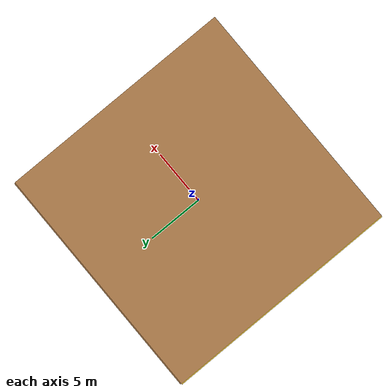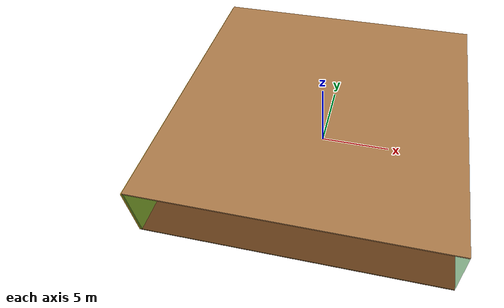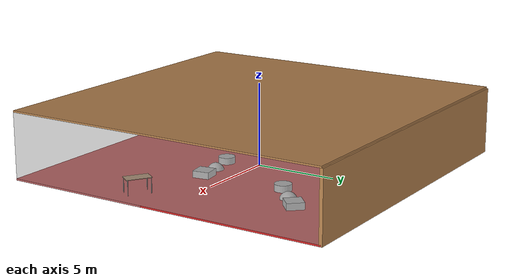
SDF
<sdf version="1.4">
 <world name="default">
  <physics type="ode">
   <max_step_size>0.001</max_step_size>
   <real_time_factor>1</real_time_factor>
   <real_time_update_rate>1000</real_time_update_rate>
   <gravity>0 0 -9.8</gravity>
  </physics>
  <scene><ambient>0.4 0.4 0.4 1</ambient><background>0.7 0.7 0.7 1</background><shadows>1</shadows></scene>
  <model name="Surrounding">
   <static>1</static>
   <link name="Ceiling">
    <collision name="Ceiling_Collision"><geometry><box><size>20 20 0.1</size></box></geometry></collision>
    <visual name="Ceiling_Visual">
     <geometry><box><size>20 20 0.1</size></box></geometry>
     <material>
      <script><uri>file://media/materials/scripts/gazebo.material</uri><name>Gazebo/WoodPallet</name></script>
     </material>
    </visual>
    <pose>0 0 4.05 0 0 0</pose>
   </link>
   <link name="Wall_South">
    <collision name="Wall_South_Collision">
     <geometry><box><size>20 0 4</size></box></geometry>
     <pose>0 0 2 0 -0 0</pose>
    </collision>
    <visual name="Wall_South_Visual">
     <pose>0 0 2 0 -0 0</pose>
     <geometry><box><size>20 0 4</size></box></geometry>
     <material>
      <script><uri>file://media/materials/scripts/gazebo.material</uri><name>Gazebo/GreenTransparent</name></script>
     </material>
    </visual>
    <velocity_decay><linear>0</linear><angular>0</angular></velocity_decay>
    <pose>0 -10 0 0 -0 0</pose>
   </link>
   <link name="Wall_East">
    <collision name="Wall_21_Collision">
     <geometry><box><size>20 0 4</size></box></geometry>
     <pose>0 0 2 0 -0 0</pose>
    </collision>
    <visual name="Wall_21_Visual">
     <pose>0 0 2 0 -0 0</pose>
     <geometry><box><size>20 0 4</size></box></geometry>
     <material>
      <script><uri>file://media/materials/scripts/gazebo.material</uri><name>Gazebo/GreyTransparent</name></script>
     </material>
    </visual>
    <velocity_decay><linear>0</linear><angular>0</angular></velocity_decay>
    <pose>10 0 0 0 -0 1.5708</pose>
   </link>
   <link name="Wall_North">
    <collision name="Wall_22_Collision">
     <geometry><box><size>20 0.2 4</size></box></geometry>
     <pose>0 0 2 0 -0 0</pose>
    </collision>
    <visual name="Wall_22_Visual">
     <pose>0 0 2 0 -0 0</pose>
     <geometry><box><size>20 0.2 4</size></box></geometry>
     <material>
      <script><uri>file://media/materials/scripts/gazebo.material</uri><name>Gazebo/WoodPallet</name></script>
     </material>
    </visual>
    <velocity_decay><linear>0</linear><angular>0</angular></velocity_decay>
    <pose>0 10 0 0 -0 0</pose>
   </link>
   <link name="Wall_West">
    <collision name="Wall_23_Collision">
     <geometry><box><size>20 0.2 4</size></box></geometry>
     <pose>0 0 2 0 -0 0</pose>
    </collision>
    <visual name="Wall_23_Visual">
     <pose>0 0 2 0 -0 0</pose>
     <geometry><box><size>20 0.2 4</size></box></geometry>
     <material>
      <script><uri>file://media/materials/scripts/gazebo.material</uri><name>Gazebo/Gold</name></script>
     </material>
    </visual>
    <velocity_decay><linear>0</linear><angular>0</angular></velocity_decay>
    <pose>-10 0 0 0 0 -1.5708</pose>
   </link>
   <link name="Ground_link">
    <collision name="collision">
     <pose>0 0 .05 0 -0 0</pose>
     <geometry><box><size>20 20 0.1</size></box></geometry>
    </collision>
    <visual name="visual">
     <pose>0 0 .05 0 -0 0</pose>
     <geometry><box><size>20 20 0.1</size></box></geometry>
     <material>
      <script><uri>file://media/materials/scripts/gazebo.material</uri><name>Gazebo/RedGlow</name></script>
     </material>
    </visual>
   </link>
   <static>1</static>
  </model>
  <spherical_coordinates>
   <surface_model>EARTH_WGS84</surface_model>
   <latitude_deg>0</latitude_deg>
   <longitude_deg>0</longitude_deg>
   <elevation>0</elevation>
   <heading_deg>0</heading_deg>
  </spherical_coordinates>
  <light name="lightball_0" type="diffuse">
   <diffuse>0.8 0.8 0.8 1</diffuse>
   <specular>0.2 0.2 0.2 1</specular>
   <attenuation>
    <range>100</range>
    <constant>0.7</constant>
    <linear>0.01</linear>
    <quadratic>0.001</quadratic>
   </attenuation>
   <direction>-0.5 0.1 -0.9</direction>
   <pose>0.704257489359 -9.12960451718 2.89092700194 0 0 0</pose>
  </light>
  <light name="lightball_1" type="diffuse">
   <diffuse>0.8 0.8 0.8 1</diffuse>
   <specular>0.2 0.2 0.2 1</specular>
   <attenuation>
    <range>100</range>
    <constant>0.7</constant>
    <linear>0.01</linear>
    <quadratic>0.001</quadratic>
   </attenuation>
   <direction>-0.5 0.1 -0.9</direction>
   <pose>-8.414092834 -6.56927441613 2.65973665995 0 0 0</pose>
  </light>
  <light name="lightball_2" type="diffuse">
   <diffuse>0.8 0.8 0.8 1</diffuse>
   <specular>0.2 0.2 0.2 1</specular>
   <attenuation>
    <range>100</range>
    <constant>0.7</constant>
    <linear>0.01</linear>
    <quadratic>0.001</quadratic>
   </attenuation>
   <direction>-0.5 0.1 -0.9</direction>
   <pose>-2.73441490391 -4.74128462148 3.54188909541 0 0 0</pose>
  </light>
  <light name="lightball_3" type="diffuse">
   <diffuse>0.8 0.8 0.8 1</diffuse>
   <specular>0.2 0.2 0.2 1</specular>
   <attenuation>
    <range>100</range>
    <constant>0.7</constant>
    <linear>0.01</linear>
    <quadratic>0.001</quadratic>
   </attenuation>
   <direction>-0.5 0.1 -0.9</direction>
   <pose>-7.47954296715 -5.04869581034 2.93684493803 0 0 0</pose>
  </light>
  <light name="lightball_4" type="diffuse">
   <diffuse>0.8 0.8 0.8 1</diffuse>
   <specular>0.2 0.2 0.2 1</specular>
   <attenuation>
    <range>100</range>
    <constant>0.7</constant>
    <linear>0.01</linear>
    <quadratic>0.001</quadratic>
   </attenuation>
   <direction>-0.5 0.1 -0.9</direction>
   <pose>4.43156967396 -4.39405280688 1.82607766558 0 0 0</pose>
  </light>
  <light name="lightball_5" type="diffuse">
   <diffuse>0.8 0.8 0.8 1</diffuse>
   <specular>0.2 0.2 0.2 1</specular>
   <attenuation>
    <range>100</range>
    <constant>0.7</constant>
    <linear>0.01</linear>
    <quadratic>0.001</quadratic>
   </attenuation>
   <direction>-0.5 0.1 -0.9</direction>
   <pose>8.51306725442 -3.77807814831 3.7847455204 0 0 0</pose>
  </light>
  <light name="lightball_6" type="diffuse">
   <diffuse>0.8 0.8 0.8 1</diffuse>
   <specular>0.2 0.2 0.2 1</specular>
   <attenuation>
    <range>100</range>
    <constant>0.7</constant>
    <linear>0.01</linear>
    <quadratic>0.001</quadratic>
   </attenuation>
   <direction>-0.5 0.1 -0.9</direction>
   <pose>6.27401922571 9.86684994894 1.13280398289 0 0 0</pose>
  </light>
  <include><uri>model://cabinet</uri><pose>-5.62226283918 -3.51480606794 0 0 0 2.93891008176</pose></include>
  <include>
   <uri>model://textured_shapes</uri>
   <pose>-3.85177719896 -2.00605995975 0 0 0 3.1257158604</pose>
  </include>
  <include><uri>model://table</uri><pose>-1.45637281734 4.5086883198 0 0 0 0.177930028618</pose></include>
  <include>
   <uri>model://textured_shapes</uri>
   <pose>2.33026013305 -1.5166586793 0 0 0 1.72494364664</pose>
  </include>
  <include>
   <uri>model://textured_shapes</uri>
   <pose>4.69916484731 4.91006121914 0 0 0 2.31778560364</pose>
  </include>
  <include><uri>model://table</uri><pose>8.30884590757 -2.5772487852 0 0 0 2.55792487036</pose></include>
 </world>
</sdf>

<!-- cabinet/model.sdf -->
<sdf version="1.5">
  <model name="cabinet">
    <static>true</static>
    <link name="cabinet_bottom_plate">
      <inertial>
        <pose>0 0 -1 0 0 0</pose>
        <inertia>
          <ixx>2.050000</ixx>
          <ixy>0</ixy>
          <ixz>0</ixz>
          <iyy>2.050000</iyy>
          <iyz>0</iyz>
          <izz>2.050000</izz>
        </inertia>
        <mass>25.000000</mass>
      </inertial>
      <collision name="cabinet_bottom_plate_geom">
        <pose>0 0 0.010000 0 0 0</pose>
        <geometry>
          <box>
            <size>0.450000 0.450000 0.020000</size>
          </box>
        </geometry>
      </collision>
      <visual name="cabinet_bottom_plate_geom_visual">
        <pose>0 0 0.010000 0 0 0</pose>
        <geometry>
          <box>
            <size>0.450000 0.450000 0.020000</size>
          </box>
        </geometry>
        <material>
          <script>
            <uri>model://media/materials/scripts/gazebo.material</uri>
            <name>Gazebo/Wood</name>
          </script>
        </material>
      </visual>
      <collision name="cabinet_bottom_plate_geom_cabinet_back_plate">
        <pose>0.235000 0 0.510000 0 0 0</pose>
        <geometry>
          <box>
            <size>0.020000 0.450000 1.020000</size>
          </box>
        </geometry>
      </collision>
      <visual name="cabinet_bottom_plate_geom_cabinet_back_plate_visual">
        <pose>0.235000 0 0.510000 0 0 0</pose>
        <geometry>
          <box>
            <size>0.020000 0.450000 1.020000</size>
          </box>
        </geometry>
        <material>
          <script>
            <uri>model://media/materials/scripts/gazebo.material</uri>
            <name>Gazebo/Wood</name>
          </script>
        </material>
      </visual>
      <collision name="cabinet_bottom_plate_geom_cabinet_left_plate">
        <pose>0 0.235000 0.510000 0 0 0</pose>
        <geometry>
          <box>
            <size>0.450000 0.020000 1.020000</size>
          </box>
        </geometry>
      </collision>
      <visual name="cabinet_bottom_plate_geom_cabinet_left_plate_visual">
        <pose>0 0.235000 0.510000 0 0 0</pose>
        <geometry>
          <box>
            <size>0.450000 0.020000 1.020000</size>
          </box>
        </geometry>
        <material>
          <script>
            <uri>model://media/materials/scripts/gazebo.material</uri>
            <name>Gazebo/Wood</name>
          </script>
        </material>
      </visual>
      <collision name="cabinet_bottom_plate_geom_cabinet_middle_plate">
        <pose>0 0 0.510000 0 0 0</pose>
        <geometry>
          <box>
            <size>0.450000 0.450000 0.020000</size>
          </box>
        </geometry>
      </collision>
      <visual name="cabinet_bottom_plate_geom_cabinet_middle_plate_visual">
        <pose>0 0 0.510000 0 0 0</pose>
        <geometry>
          <box>
            <size>0.450000 0.450000 0.020000</size>
          </box>
        </geometry>
        <material>
          <script>
            <uri>model://media/materials/scripts/gazebo.material</uri>
            <name>Gazebo/Wood</name>
          </script>
        </material>
      </visual>
      <collision name="cabinet_bottom_plate_geom_cabinet_right_plate">
        <pose>0 -0.235000 0.510000 0 0 0</pose>
        <geometry>
          <box>
            <size>0.450000 0.020000 1.020000</size>
          </box>
        </geometry>
      </collision>
      <visual name="cabinet_bottom_plate_geom_cabinet_right_plate_visual">
        <pose>0 -0.235000 0.510000 0 0 0</pose>
        <geometry>
          <box>
            <size>0.450000 0.020000 1.020000</size>
          </box>
        </geometry>
        <material>
          <script>
            <uri>model://media/materials/scripts/gazebo.material</uri>
            <name>Gazebo/Wood</name>
          </script>
        </material>
      </visual>
      <collision name="cabinet_bottom_plate_geom_cabinet_top_plate">
        <pose>0 0 1.010000 0 0 0</pose>
        <geometry>
          <box>
            <size>0.450000 0.450000 0.020000</size>
          </box>
        </geometry>
      </collision>
      <visual name="cabinet_bottom_plate_geom_cabinet_top_plate_visual">
        <pose>0 0 1.010000 0 0 0</pose>
        <geometry>
          <box>
            <size>0.450000 0.450000 0.020000</size>
          </box>
        </geometry>
        <material>
          <script>
            <uri>model://media/materials/scripts/gazebo.material</uri>
            <name>Gazebo/Wood</name>
          </script>
        </material>
      </visual>
    </link>
  </model>
</sdf>

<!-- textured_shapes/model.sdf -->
<sdf version="1.6">
  <model name="textured_shapes">
    <pose>0 0 0.5 0 0 0</pose>
    <link name="box">
      <pose>0 -1.5 0 0 0 0</pose>
      <collision name="collision">
        <geometry>
          <box>
            <size>1 1 1</size>
          </box>
        </geometry>
      </collision>
      <visual name="visual">
        <geometry>
          <box>
            <size>1 1 1</size>
          </box>
        </geometry>
        <material>
          <script>
            <uri>model://../model_source/models/textured_shapes/materials/scripts</uri>
            <uri>model://../model_source/models/textured_shapes/materials/textures</uri>
            <name>TexturedShape/Squares</name>
          </script>
        </material>
      </visual>
    </link>
    <link name="sphere">
      <collision name="collision">
        <geometry>
          <sphere>
            <radius>0.5</radius>
          </sphere>
        </geometry>
      </collision>
      <visual name="visual">
        <geometry>
          <sphere>
            <radius>0.5</radius>
          </sphere>
        </geometry>
        <material>
          <script>
            <uri>model://../model_source/models/textured_shapes/materials/scripts</uri>
            <uri>model://../model_source/models/textured_shapes/materials/textures</uri>
            <name>TexturedShape/Squares</name>
          </script>
        </material>
      </visual>
    </link>
    <link name="cylinder">
      <pose>0 1.5 0 0 0 0</pose>
      <collision name="collision">
        <geometry>
          <cylinder>
            <radius>0.5</radius>
            <length>1</length>
          </cylinder>
        </geometry>
      </collision>
      <visual name="visual">
        <geometry>
          <cylinder>
            <radius>0.5</radius>
            <length>1</length>
          </cylinder>
        </geometry>
        <material>
          <script>
            <uri>model://../model_source/models/textured_shapes/materials/scripts</uri>
            <uri>model://../model_source/models/textured_shapes/materials/textures</uri>
            <name>TexturedShape/Squares</name>
          </script>
        </material>
      </visual>
    </link>
  </model>
</sdf>

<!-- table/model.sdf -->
<sdf version="1.5">
  <model name="table">
    <static>true</static>
    <link name="link">
      <collision name="surface">
        <pose>0 0 1.0 0 0 0</pose>
        <geometry>
          <box>
            <size>1.5 0.8 0.03</size>
          </box>
        </geometry>
        <surface>
          <friction>
            <ode>
              <mu>0.6</mu>
              <mu2>0.6</mu2>
            </ode>
          </friction>
        </surface>
      </collision>
      <visual name="visual1">
        <pose>0 0 1.0 0 0 0</pose>
        <geometry>
          <box>
            <size>1.5 0.8 0.03</size>
          </box>
        </geometry>
        <material>
          <script>
            <uri>model://media/materials/scripts/gazebo.material</uri>
            <name>Gazebo/Wood</name>
          </script>
        </material>
      </visual>
      <collision name="front_left_leg">
        <pose>0.68 0.38 0.5 0 0 0</pose>
        <geometry>
          <cylinder>
            <radius>0.02</radius>
            <length>1.0</length>
          </cylinder>
        </geometry>
      </collision>
      <visual name="front_left_leg">
        <pose>0.68 0.38 0.5 0 0 0</pose>
        <geometry>
          <cylinder>
            <radius>0.02</radius>
            <length>1.0</length>
          </cylinder>
        </geometry>
        <material>
          <script>
            <uri>model://media/materials/scripts/gazebo.material</uri>
            <name>Gazebo/Grey</name>
          </script>
        </material>
      </visual>
      <collision name="front_right_leg">
        <pose>0.68 -0.38 0.5 0 0 0</pose>
        <geometry>
          <cylinder>
            <radius>0.02</radius>
            <length>1.0</length>
          </cylinder>
        </geometry>
      </collision>
      <visual name="front_right_leg">
        <pose>0.68 -0.38 0.5 0 0 0</pose>
        <geometry>
          <cylinder>
            <radius>0.02</radius>
            <length>1.0</length>
          </cylinder>
        </geometry>
        <material>
          <script>
            <uri>model://media/materials/scripts/gazebo.material</uri>
            <name>Gazebo/Grey</name>
          </script>
        </material>
      </visual>
      <collision name="back_right_leg">
        <pose>-0.68 -0.38 0.5 0 0 0</pose>
        <geometry>
          <cylinder>
            <radius>0.02</radius>
            <length>1.0</length>
          </cylinder>
        </geometry>
      </collision>
      <visual name="back_right_leg">
        <pose>-0.68 -0.38 0.5 0 0 0</pose>
        <geometry>
          <cylinder>
            <radius>0.02</radius>
            <length>1.0</length>
          </cylinder>
        </geometry>
        <material>
          <script>
            <uri>model://media/materials/scripts/gazebo.material</uri>
            <name>Gazebo/Grey</name>
          </script>
        </material>
      </visual>
      <collision name="back_left_leg">
        <pose>-0.68 0.38 0.5 0 0 0</pose>
        <geometry>
          <cylinder>
            <radius>0.02</radius>
            <length>1.0</length>
          </cylinder>
        </geometry>
      </collision>
      <visual name="back_left_leg">
        <pose>-0.68 0.38 0.5 0 0 0</pose>
        <geometry>
          <cylinder>
            <radius>0.02</radius>
            <length>1.0</length>
          </cylinder>
        </geometry>
        <material>
          <script>
            <uri>model://media/materials/scripts/gazebo.material</uri>
            <name>Gazebo/Grey</name>
          </script>
        </material>
      </visual>
    </link>
  </model>
</sdf>
